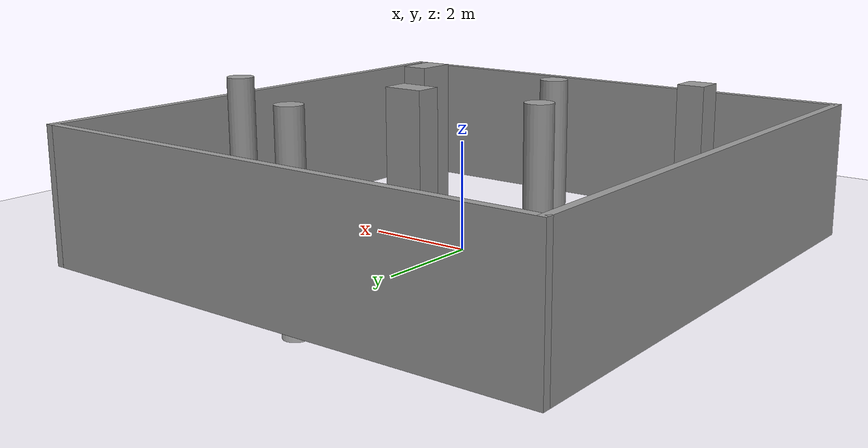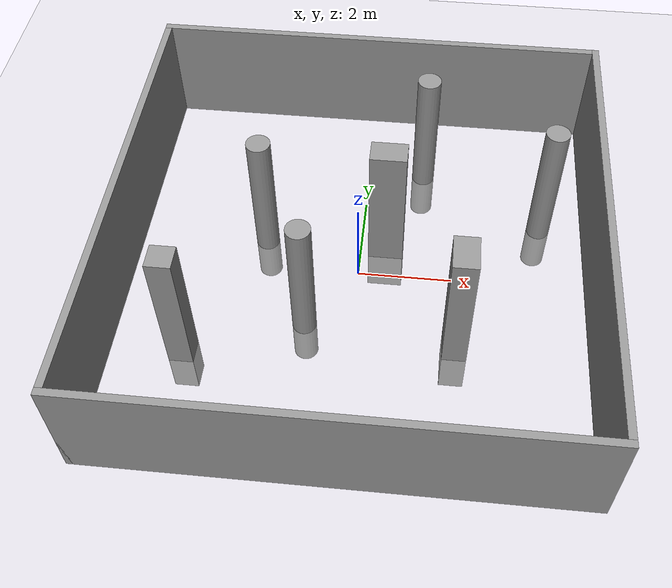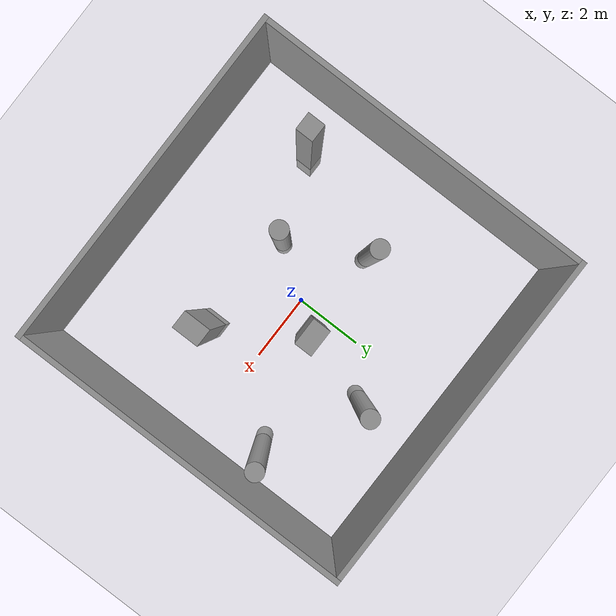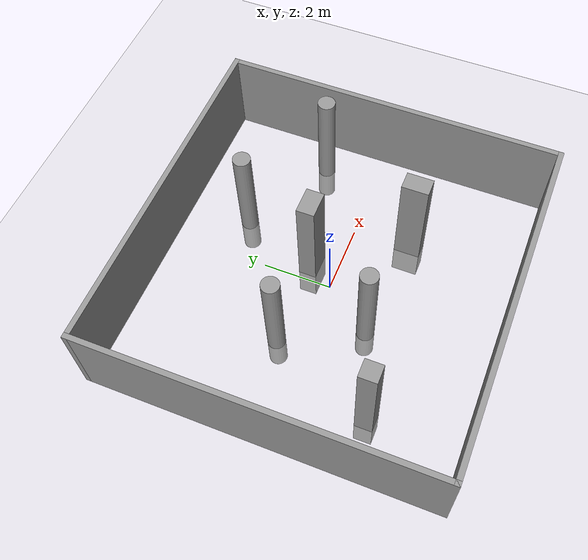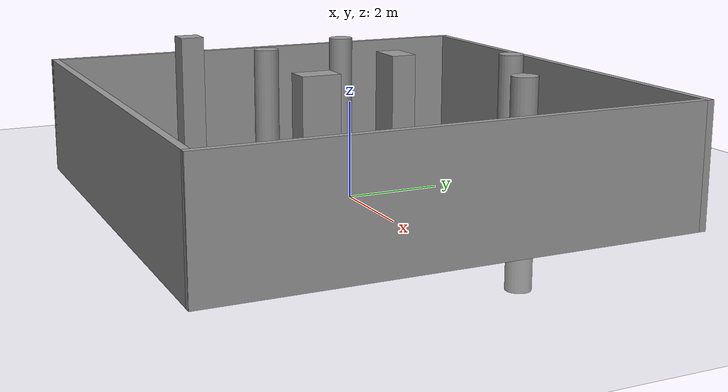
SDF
<sdf version="1.6">
 <world name="default">
  <light name="sun" type="directional">
   <pose>0 0 10 0 -0 0</pose>
   <diffuse>0.8 0.8 0.8 1</diffuse>
   <specular>0.2 0.2 0.2 1</specular>
   <attenuation>
    <range>1000</range>
    <constant>0.9</constant>
    <linear>0.01</linear>
    <quadratic>0.001</quadratic>
   </attenuation>
   <direction>-0.5 0.1 -0.9</direction>
  </light>
  <model name="ground_plane">
   <static>1</static>
   <link name="link">
    <collision name="collision">
     <geometry><plane><normal>0 0 1</normal><size>100 100</size></plane></geometry>
     <surface><friction><ode><mu>100</mu><mu2>50</mu2></ode></friction></surface>
    </collision>
    <visual name="visual">
     <cast_shadows>0</cast_shadows>
     <geometry><plane><normal>0 0 1</normal><size>100 100</size></plane></geometry>
     <material>
      <script><uri>file://media/materials/scripts/gazebo.material</uri><name>Gazebo/Grey</name></script>
     </material>
    </visual>
   </link>
  </model>
  <gravity>0 0 -9.8</gravity>
  <magnetic_field>6e-06 2.3e-05 -4.2e-05</magnetic_field>
  <atmosphere type="adiabatic"/>
  <physics name="default_physics" default="0" type="ode">
   <max_step_size>0.001</max_step_size>
   <real_time_factor>1</real_time_factor>
   <real_time_update_rate>1000</real_time_update_rate>
  </physics>
  <scene><ambient>0.4 0.4 0.4 1</ambient><background>0.7 0.7 0.7 1</background><shadows>1</shadows></scene>
  <spherical_coordinates>
   <surface_model>EARTH_WGS84</surface_model>
   <latitude_deg>0</latitude_deg>
   <longitude_deg>0</longitude_deg>
   <elevation>0</elevation>
   <heading_deg>0</heading_deg>
  </spherical_coordinates>
  <model name="10X10_wall">
   <pose>-0.001035 -0.004402 0 0 -0 0</pose>
   <link name="Wall_0">
    <collision name="Wall_0_Collision">
     <geometry><box><size>10 0.15 2.5</size></box></geometry>
     <pose>0 0 1.25 0 -0 0</pose>
    </collision>
    <visual name="Wall_0_Visual">
     <pose>0 0 1.25 0 -0 0</pose>
     <geometry><box><size>10 0.15 2.5</size></box></geometry>
     <material>
      <script><uri>file://media/materials/scripts/gazebo.material</uri><name>Gazebo/Grey</name></script>
      <ambient>1 1 1 1</ambient>
     </material>
     <meta><layer>0</layer></meta>
    </visual>
    <pose>0 -4.925 0 0 -0 0</pose>
   </link>
   <link name="Wall_1">
    <collision name="Wall_1_Collision">
     <geometry><box><size>10 0.15 2.5</size></box></geometry>
     <pose>0 0 1.25 0 -0 0</pose>
    </collision>
    <visual name="Wall_1_Visual">
     <pose>0 0 1.25 0 -0 0</pose>
     <geometry><box><size>10 0.15 2.5</size></box></geometry>
     <material>
      <script><uri>file://media/materials/scripts/gazebo.material</uri><name>Gazebo/Grey</name></script>
      <ambient>1 1 1 1</ambient>
     </material>
     <meta><layer>0</layer></meta>
    </visual>
    <pose>4.925 0 0 0 -0 1.5708</pose>
   </link>
   <link name="Wall_2">
    <collision name="Wall_2_Collision">
     <geometry><box><size>10 0.15 2.5</size></box></geometry>
     <pose>0 0 1.25 0 -0 0</pose>
    </collision>
    <visual name="Wall_2_Visual">
     <pose>0 0 1.25 0 -0 0</pose>
     <geometry><box><size>10 0.15 2.5</size></box></geometry>
     <material>
      <script><uri>file://media/materials/scripts/gazebo.material</uri><name>Gazebo/Grey</name></script>
      <ambient>1 1 1 1</ambient>
     </material>
     <meta><layer>0</layer></meta>
    </visual>
    <pose>0 4.925 0 0 -0 3.14159</pose>
   </link>
   <link name="Wall_3">
    <collision name="Wall_3_Collision">
     <geometry><box><size>10 0.15 2.5</size></box></geometry>
     <pose>0 0 1.25 0 -0 0</pose>
    </collision>
    <visual name="Wall_3_Visual">
     <pose>0 0 1.25 0 -0 0</pose>
     <geometry><box><size>10 0.15 2.5</size></box></geometry>
     <material>
      <script><uri>file://media/materials/scripts/gazebo.material</uri><name>Gazebo/Grey</name></script>
      <ambient>1 1 1 1</ambient>
     </material>
     <meta><layer>0</layer></meta>
    </visual>
    <pose>-4.925 0 0 0 0 -1.5708</pose>
   </link>
   <static>1</static>
  </model>
  <model name=".25_cylinder">
   <link name="link">
    <inertial>
     <mass>1</mass>
     <inertia><ixx>0.145833</ixx><ixy>0</ixy><ixz>0</ixz><iyy>0.145833</iyy><iyz>0</iyz><izz>0.125</izz></inertia>
    </inertial>
    <visual name="visual">
     <geometry><cylinder><radius>0.25</radius><length>4</length></cylinder></geometry>
     <material>
      <script><name>Gazebo/Grey</name><uri>file://media/materials/scripts/gazebo.material</uri></script>
      <shader type="pixel"><normal_map>__default__</normal_map></shader>
      <ambient>0.3 0.3 0.3 1</ambient>
      <diffuse>0.7 0.7 0.7 1</diffuse>
      <specular>0.01 0.01 0.01 1</specular>
      <emissive>0 0 0 1</emissive>
     </material>
    </visual>
    <collision name="collision">
     <geometry><cylinder><radius>0.25</radius><length>4</length></cylinder></geometry>
     <surface>
      <friction>
       <ode><mu>1</mu><mu2>1</mu2><fdir1>0 0 0</fdir1><slip1>0</slip1><slip2>0</slip2></ode>
       <torsional>
        <coefficient>1</coefficient>
        <patch_radius>0</patch_radius>
        <surface_radius>0</surface_radius>
        <use_patch_radius>1</use_patch_radius>
        <ode><slip>0</slip></ode>
       </torsional>
      </friction>
      <bounce><restitution_coefficient>0</restitution_coefficient><threshold>1e+06</threshold></bounce>
      <contact>
       <collide_without_contact>0</collide_without_contact>
       <collide_without_contact_bitmask>1</collide_without_contact_bitmask>
       <collide_bitmask>1</collide_bitmask>
       <ode>
        <soft_cfm>0</soft_cfm>
        <soft_erp>0.2</soft_erp>
        <kp>1e+13</kp>
        <kd>1</kd>
        <max_vel>0.01</max_vel>
        <min_depth>0</min_depth>
       </ode>
       <bullet>
        <split_impulse>1</split_impulse>
        <split_impulse_penetration_threshold>-0.01</split_impulse_penetration_threshold>
        <soft_cfm>0</soft_cfm>
        <soft_erp>0.2</soft_erp>
        <kp>1e+13</kp>
        <kd>1</kd>
       </bullet>
      </contact>
     </surface>
    </collision>
   </link>
   <static>0</static>
   <pose>-0.989378 -1.42284 1.03255 -3e-06 -4e-06 -0</pose>
  </model>
  <model name=".25_cylinder_0">
   <link name="link">
    <inertial>
     <mass>1</mass>
     <inertia><ixx>0.145833</ixx><ixy>0</ixy><ixz>0</ixz><iyy>0.145833</iyy><iyz>0</iyz><izz>0.125</izz></inertia>
    </inertial>
    <visual name="visual">
     <geometry><cylinder><radius>0.25</radius><length>4</length></cylinder></geometry>
     <material>
      <script><name>Gazebo/Grey</name><uri>file://media/materials/scripts/gazebo.material</uri></script>
      <shader type="pixel"><normal_map>__default__</normal_map></shader>
      <ambient>0.3 0.3 0.3 1</ambient>
      <diffuse>0.7 0.7 0.7 1</diffuse>
      <specular>0.01 0.01 0.01 1</specular>
      <emissive>0 0 0 1</emissive>
     </material>
    </visual>
    <collision name="collision">
     <geometry><cylinder><radius>0.25</radius><length>4</length></cylinder></geometry>
     <surface>
      <friction>
       <ode><mu>1</mu><mu2>1</mu2><fdir1>0 0 0</fdir1><slip1>0</slip1><slip2>0</slip2></ode>
       <torsional>
        <coefficient>1</coefficient>
        <patch_radius>0</patch_radius>
        <surface_radius>0</surface_radius>
        <use_patch_radius>1</use_patch_radius>
        <ode><slip>0</slip></ode>
       </torsional>
      </friction>
      <bounce><restitution_coefficient>0</restitution_coefficient><threshold>1e+06</threshold></bounce>
      <contact>
       <collide_without_contact>0</collide_without_contact>
       <collide_without_contact_bitmask>1</collide_without_contact_bitmask>
       <collide_bitmask>1</collide_bitmask>
       <ode>
        <soft_cfm>0</soft_cfm>
        <soft_erp>0.2</soft_erp>
        <kp>1e+13</kp>
        <kd>1</kd>
        <max_vel>0.01</max_vel>
        <min_depth>0</min_depth>
       </ode>
       <bullet>
        <split_impulse>1</split_impulse>
        <split_impulse_penetration_threshold>-0.01</split_impulse_penetration_threshold>
        <soft_cfm>0</soft_cfm>
        <soft_erp>0.2</soft_erp>
        <kp>1e+13</kp>
        <kd>1</kd>
       </bullet>
      </contact>
     </surface>
    </collision>
   </link>
   <static>0</static>
   <pose>-2.09552 0.74045 1.01428 0 -0 0</pose>
  </model>
  <model name=".25_cylinder_1">
   <link name="link">
    <inertial>
     <mass>1</mass>
     <inertia><ixx>0.145833</ixx><ixy>0</ixy><ixz>0</ixz><iyy>0.145833</iyy><iyz>0</iyz><izz>0.125</izz></inertia>
    </inertial>
    <visual name="visual">
     <geometry><cylinder><radius>0.25</radius><length>4</length></cylinder></geometry>
     <material>
      <script><name>Gazebo/Grey</name><uri>file://media/materials/scripts/gazebo.material</uri></script>
      <shader type="pixel"><normal_map>__default__</normal_map></shader>
      <ambient>0.3 0.3 0.3 1</ambient>
      <diffuse>0.7 0.7 0.7 1</diffuse>
      <specular>0.01 0.01 0.01 1</specular>
      <emissive>0 0 0 1</emissive>
     </material>
    </visual>
    <collision name="collision">
     <geometry><cylinder><radius>0.25</radius><length>4</length></cylinder></geometry>
     <surface>
      <friction>
       <ode><mu>1</mu><mu2>1</mu2><fdir1>0 0 0</fdir1><slip1>0</slip1><slip2>0</slip2></ode>
       <torsional>
        <coefficient>1</coefficient>
        <patch_radius>0</patch_radius>
        <surface_radius>0</surface_radius>
        <use_patch_radius>1</use_patch_radius>
        <ode><slip>0</slip></ode>
       </torsional>
      </friction>
      <bounce><restitution_coefficient>0</restitution_coefficient><threshold>1e+06</threshold></bounce>
      <contact>
       <collide_without_contact>0</collide_without_contact>
       <collide_without_contact_bitmask>1</collide_without_contact_bitmask>
       <collide_bitmask>1</collide_bitmask>
       <ode>
        <soft_cfm>0</soft_cfm>
        <soft_erp>0.2</soft_erp>
        <kp>1e+13</kp>
        <kd>1</kd>
        <max_vel>0.01</max_vel>
        <min_depth>0</min_depth>
       </ode>
       <bullet>
        <split_impulse>1</split_impulse>
        <split_impulse_penetration_threshold>-0.01</split_impulse_penetration_threshold>
        <soft_cfm>0</soft_cfm>
        <soft_erp>0.2</soft_erp>
        <kp>1e+13</kp>
        <kd>1</kd>
       </bullet>
      </contact>
     </surface>
    </collision>
   </link>
   <static>0</static>
   <pose>1.23246 3.03289 0.956058 0 -0 0</pose>
  </model>
  <model name="0.5_box_0">
   <link name="link">
    <inertial>
     <mass>1</mass>
     <inertia>
      <ixx>0.166667</ixx>
      <ixy>0</ixy>
      <ixz>0</ixz>
      <iyy>0.166667</iyy>
      <iyz>0</iyz>
      <izz>0.166667</izz>
     </inertia>
    </inertial>
    <visual name="visual">
     <geometry><box><size>0.5 0.5 4</size></box></geometry>
     <material>
      <script><name>Gazebo/Grey</name><uri>file://media/materials/scripts/gazebo.material</uri></script>
      <shader type="pixel"><normal_map>__default__</normal_map></shader>
      <ambient>0.3 0.3 0.3 1</ambient>
      <diffuse>0.7 0.7 0.7 1</diffuse>
      <specular>0.01 0.01 0.01 1</specular>
      <emissive>0 0 0 1</emissive>
     </material>
    </visual>
    <collision name="collision">
     <geometry><box><size>0.5 0.5 4</size></box></geometry>
     <surface>
      <friction>
       <ode><mu>1</mu><mu2>1</mu2><fdir1>0 0 0</fdir1><slip1>0</slip1><slip2>0</slip2></ode>
       <torsional>
        <coefficient>1</coefficient>
        <patch_radius>0</patch_radius>
        <surface_radius>0</surface_radius>
        <use_patch_radius>1</use_patch_radius>
        <ode><slip>0</slip></ode>
       </torsional>
      </friction>
      <bounce><restitution_coefficient>0</restitution_coefficient><threshold>1e+06</threshold></bounce>
      <contact>
       <collide_without_contact>0</collide_without_contact>
       <collide_without_contact_bitmask>1</collide_without_contact_bitmask>
       <collide_bitmask>1</collide_bitmask>
       <ode>
        <soft_cfm>0</soft_cfm>
        <soft_erp>0.2</soft_erp>
        <kp>1e+13</kp>
        <kd>1</kd>
        <max_vel>0.01</max_vel>
        <min_depth>0</min_depth>
       </ode>
       <bullet>
        <split_impulse>1</split_impulse>
        <split_impulse_penetration_threshold>-0.01</split_impulse_penetration_threshold>
        <soft_cfm>0</soft_cfm>
        <soft_erp>0.2</soft_erp>
        <kp>1e+13</kp>
        <kd>1</kd>
       </bullet>
      </contact>
     </surface>
    </collision>
   </link>
   <static>0</static>
   <pose>-3.35797 -2.32044 1.05523 0 -0 0</pose>
  </model>
  <model name="0.75X0.5_box">
   <link name="link">
    <inertial>
     <mass>1</mass>
     <inertia>
      <ixx>0.166667</ixx>
      <ixy>0</ixy>
      <ixz>0</ixz>
      <iyy>0.166667</iyy>
      <iyz>0</iyz>
      <izz>0.166667</izz>
     </inertia>
    </inertial>
    <visual name="visual">
     <geometry><box><size>0.75 0.5 4</size></box></geometry>
     <material>
      <script><name>Gazebo/Grey</name><uri>file://media/materials/scripts/gazebo.material</uri></script>
      <shader type="pixel"><normal_map>__default__</normal_map></shader>
      <ambient>0.3 0.3 0.3 1</ambient>
      <diffuse>0.7 0.7 0.7 1</diffuse>
      <specular>0.01 0.01 0.01 1</specular>
      <emissive>0 0 0 1</emissive>
     </material>
    </visual>
    <collision name="collision">
     <geometry><box><size>0.75 0.5 4</size></box></geometry>
     <surface>
      <friction>
       <ode><mu>1</mu><mu2>1</mu2><fdir1>0 0 0</fdir1><slip1>0</slip1><slip2>0</slip2></ode>
       <torsional>
        <coefficient>1</coefficient>
        <patch_radius>0</patch_radius>
        <surface_radius>0</surface_radius>
        <use_patch_radius>1</use_patch_radius>
        <ode><slip>0</slip></ode>
       </torsional>
      </friction>
      <bounce><restitution_coefficient>0</restitution_coefficient><threshold>1e+06</threshold></bounce>
      <contact>
       <collide_without_contact>0</collide_without_contact>
       <collide_without_contact_bitmask>1</collide_without_contact_bitmask>
       <collide_bitmask>1</collide_bitmask>
       <ode>
        <soft_cfm>0</soft_cfm>
        <soft_erp>0.2</soft_erp>
        <kp>1e+13</kp>
        <kd>1</kd>
        <max_vel>0.01</max_vel>
        <min_depth>0</min_depth>
       </ode>
       <bullet>
        <split_impulse>1</split_impulse>
        <split_impulse_penetration_threshold>-0.01</split_impulse_penetration_threshold>
        <soft_cfm>0</soft_cfm>
        <soft_erp>0.2</soft_erp>
        <kp>1e+13</kp>
        <kd>1</kd>
       </bullet>
      </contact>
     </surface>
    </collision>
   </link>
   <static>0</static>
   <pose>0.536232 0.757514 1.02144 0 -0 0</pose>
  </model>
  <model name="0.5_box_1">
   <link name="link">
    <inertial>
     <mass>1</mass>
     <inertia>
      <ixx>0.166667</ixx>
      <ixy>0</ixy>
      <ixz>0</ixz>
      <iyy>0.166667</iyy>
      <iyz>0</iyz>
      <izz>0.166667</izz>
     </inertia>
    </inertial>
    <visual name="visual">
     <geometry><box><size>0.5 0.75 4</size></box></geometry>
     <material>
      <script><name>Gazebo/Grey</name><uri>file://media/materials/scripts/gazebo.material</uri></script>
      <shader type="pixel"><normal_map>__default__</normal_map></shader>
      <ambient>0.3 0.3 0.3 1</ambient>
      <diffuse>0.7 0.7 0.7 1</diffuse>
      <specular>0.01 0.01 0.01 1</specular>
      <emissive>0 0 0 1</emissive>
     </material>
    </visual>
    <collision name="collision">
     <geometry><box><size>0.5 0.75 4</size></box></geometry>
     <surface>
      <friction>
       <ode><mu>1</mu><mu2>1</mu2><fdir1>0 0 0</fdir1><slip1>0</slip1><slip2>0</slip2></ode>
       <torsional>
        <coefficient>1</coefficient>
        <patch_radius>0</patch_radius>
        <surface_radius>0</surface_radius>
        <use_patch_radius>1</use_patch_radius>
        <ode><slip>0</slip></ode>
       </torsional>
      </friction>
      <bounce><restitution_coefficient>0</restitution_coefficient><threshold>1e+06</threshold></bounce>
      <contact>
       <collide_without_contact>0</collide_without_contact>
       <collide_without_contact_bitmask>1</collide_without_contact_bitmask>
       <collide_bitmask>1</collide_bitmask>
       <ode>
        <soft_cfm>0</soft_cfm>
        <soft_erp>0.2</soft_erp>
        <kp>1e+13</kp>
        <kd>1</kd>
        <max_vel>0.01</max_vel>
        <min_depth>0</min_depth>
       </ode>
       <bullet>
        <split_impulse>1</split_impulse>
        <split_impulse_penetration_threshold>-0.01</split_impulse_penetration_threshold>
        <soft_cfm>0</soft_cfm>
        <soft_erp>0.2</soft_erp>
        <kp>1e+13</kp>
        <kd>1</kd>
       </bullet>
      </contact>
     </surface>
    </collision>
   </link>
   <model name=".25_cylinder">
    <link name="link">
     <inertial>
      <mass>1</mass>
      <inertia><ixx>0.145833</ixx><ixy>0</ixy><ixz>0</ixz><iyy>0.145833</iyy><iyz>0</iyz><izz>0.125</izz></inertia>
     </inertial>
     <visual name="visual">
      <geometry><cylinder><radius>0.25</radius><length>4</length></cylinder></geometry>
      <material>
       <script><name>Gazebo/Grey</name><uri>file://media/materials/scripts/gazebo.material</uri></script>
       <shader type="pixel"><normal_map>__default__</normal_map></shader>
       <ambient>0.3 0.3 0.3 1</ambient>
       <diffuse>0.7 0.7 0.7 1</diffuse>
       <specular>0.01 0.01 0.01 1</specular>
       <emissive>0 0 0 1</emissive>
      </material>
     </visual>
     <collision name="collision">
      <geometry><cylinder><radius>0.25</radius><length>4</length></cylinder></geometry>
      <surface>
       <friction>
        <ode><mu>1</mu><mu2>1</mu2><fdir1>0 0 0</fdir1><slip1>0</slip1><slip2>0</slip2></ode>
        <torsional>
         <coefficient>1</coefficient>
         <patch_radius>0</patch_radius>
         <surface_radius>0</surface_radius>
         <use_patch_radius>1</use_patch_radius>
         <ode><slip>0</slip></ode>
        </torsional>
       </friction>
       <bounce><restitution_coefficient>0</restitution_coefficient><threshold>1e+06</threshold></bounce>
       <contact>
        <collide_without_contact>0</collide_without_contact>
        <collide_without_contact_bitmask>1</collide_without_contact_bitmask>
        <collide_bitmask>1</collide_bitmask>
        <ode>
         <soft_cfm>0</soft_cfm>
         <soft_erp>0.2</soft_erp>
         <kp>1e+13</kp>
         <kd>1</kd>
         <max_vel>0.01</max_vel>
         <min_depth>0</min_depth>
        </ode>
        <bullet>
         <split_impulse>1</split_impulse>
         <split_impulse_penetration_threshold>-0.01</split_impulse_penetration_threshold>
         <soft_cfm>0</soft_cfm>
         <soft_erp>0.2</soft_erp>
         <kp>1e+13</kp>
         <kd>1</kd>
        </bullet>
       </contact>
      </surface>
     </collision>
    </link>
    <static>0</static>
    <pose>1.7663 3.26878 0 0 -0 0</pose>
   </model>
   <static>0</static>
   <pose>2.12824 -1.64377 1.00775 0 -0 0</pose>
  </model>
 </world>
</sdf>
